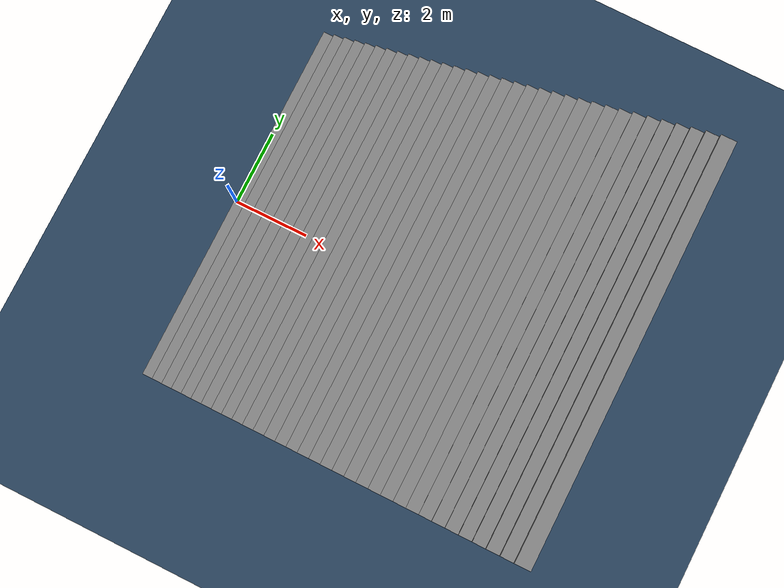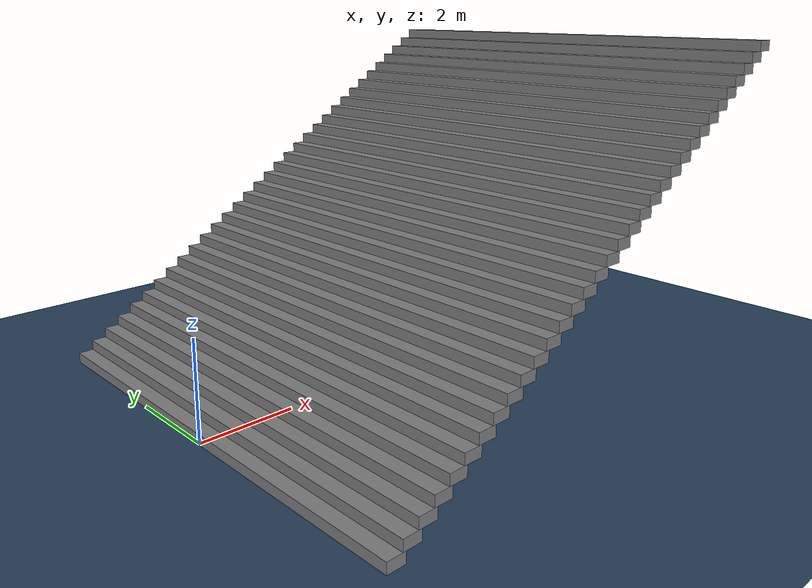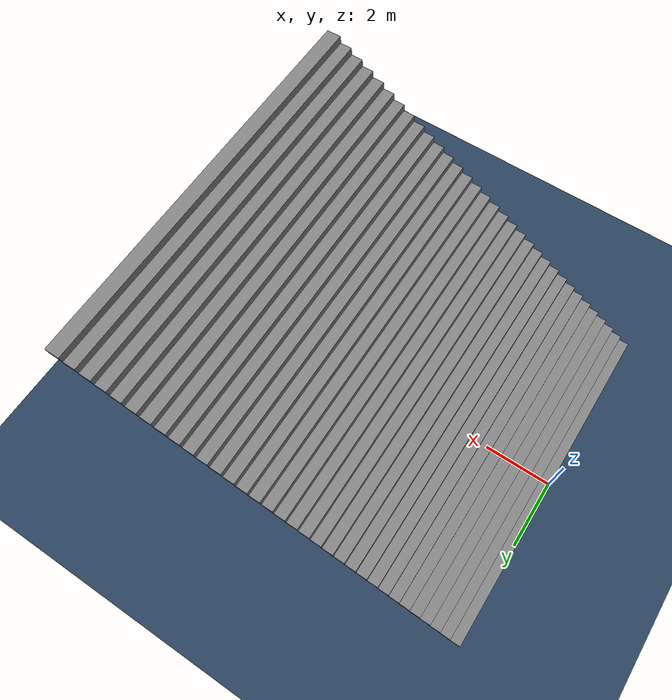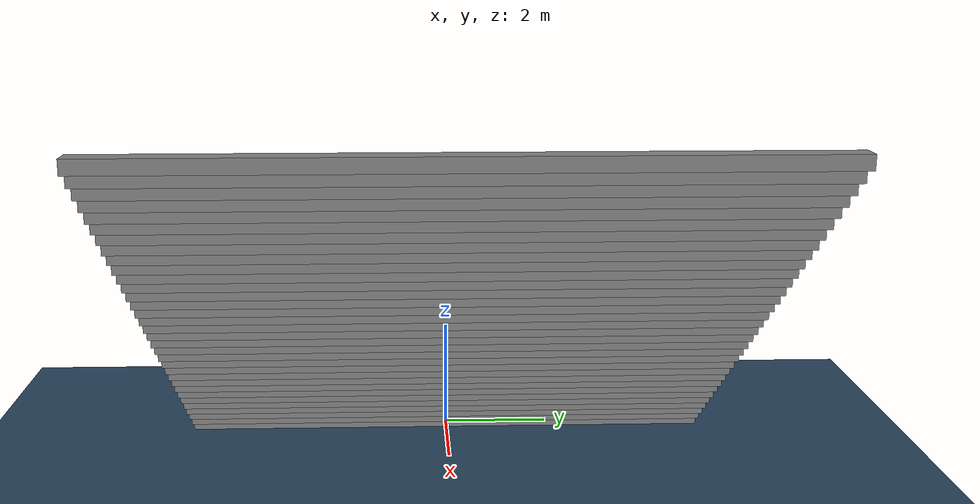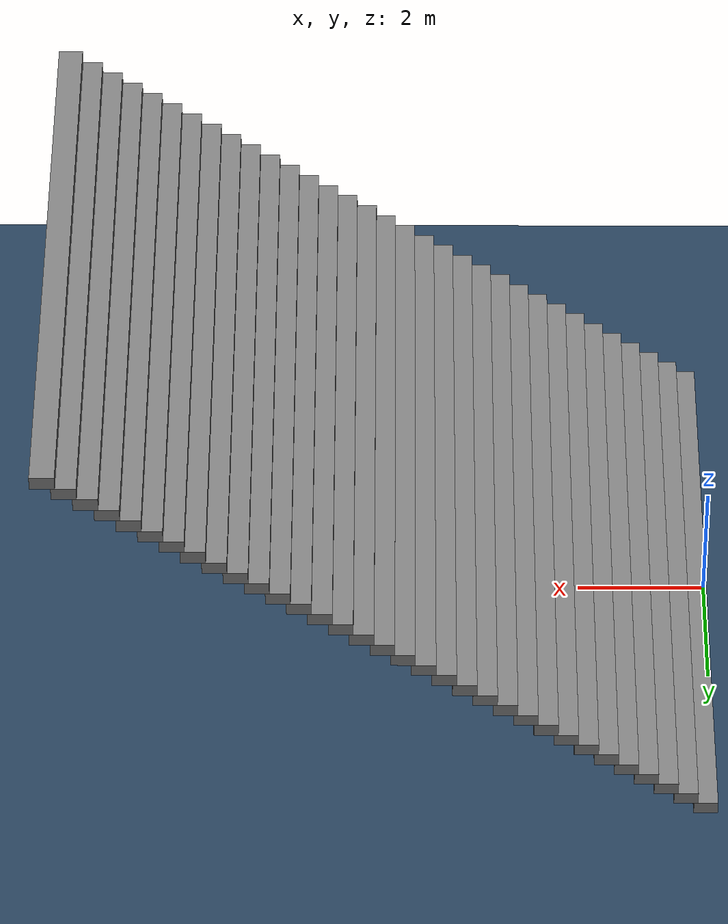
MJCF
<mujoco model="stairs_up_8">
  <!-- Terrain Type: stairs_up, Level: 8, Stairs step height: 0.2100 -->
  <statistic center="0 0 0.1" extent="0.8" />
  <visual>
    <headlight diffuse="0.6 0.6 0.6" ambient="0.3 0.3 0.3" specular="0 0 0" />
    <rgba haze="0.15 0.25 0.35 1" />
    <global azimuth="-130" elevation="-20" />
  </visual>
  <asset>
    <texture type="skybox" builtin="gradient" rgb1="0.3 0.5 0.7" rgb2="0 0 0" width="512" height="3072" />
    <texture type="2d" name="groundplane" builtin="checker" mark="edge" rgb1="0.2 0.3 0.4" rgb2="0.1 0.2 0.3" markrgb="0.8 0.8 0.8" width="300" height="300" />
    <material name="groundplane" texture="groundplane" texuniform="true" texrepeat="5 5" reflectance="0.0" />
  </asset>
  <worldbody>
    <light pos="0 0 1.5" dir="0 0 -1" directional="true" />
    <geom name="floor" size="0 0 0.05" type="plane" material="groundplane" />
    <geom pos="0.155 0.0 0.10500000000000001" type="box" size="0.186 5.0 0.10500000000000001" quat="1.0 0.0 0.0 0.0" />
    <geom pos="0.46499999999999997 0.0 0.31500000000000006" type="box" size="0.186 5.0 0.10500000000000001" quat="1.0 0.0 0.0 0.0" />
    <geom pos="0.7749999999999999 0.0 0.5250000000000001" type="box" size="0.186 5.0 0.10500000000000001" quat="1.0 0.0 0.0 0.0" />
    <geom pos="1.085 0.0 0.7350000000000001" type="box" size="0.186 5.0 0.10500000000000001" quat="1.0 0.0 0.0 0.0" />
    <geom pos="1.395 0.0 0.9450000000000001" type="box" size="0.186 5.0 0.10500000000000001" quat="1.0 0.0 0.0 0.0" />
    <geom pos="1.705 0.0 1.155" type="box" size="0.186 5.0 0.10500000000000001" quat="1.0 0.0 0.0 0.0" />
    <geom pos="2.015 0.0 1.365" type="box" size="0.186 5.0 0.10500000000000001" quat="1.0 0.0 0.0 0.0" />
    <geom pos="2.325 0.0 1.575" type="box" size="0.186 5.0 0.10500000000000001" quat="1.0 0.0 0.0 0.0" />
    <geom pos="2.6350000000000002 0.0 1.785" type="box" size="0.186 5.0 0.10500000000000001" quat="1.0 0.0 0.0 0.0" />
    <geom pos="2.9450000000000003 0.0 1.9949999999999999" type="box" size="0.186 5.0 0.10500000000000001" quat="1.0 0.0 0.0 0.0" />
    <geom pos="3.2550000000000003 0.0 2.205" type="box" size="0.186 5.0 0.10500000000000001" quat="1.0 0.0 0.0 0.0" />
    <geom pos="3.5650000000000004 0.0 2.415" type="box" size="0.186 5.0 0.10500000000000001" quat="1.0 0.0 0.0 0.0" />
    <geom pos="3.8750000000000004 0.0 2.625" type="box" size="0.186 5.0 0.10500000000000001" quat="1.0 0.0 0.0 0.0" />
    <geom pos="4.1850000000000005 0.0 2.835" type="box" size="0.186 5.0 0.10500000000000001" quat="1.0 0.0 0.0 0.0" />
    <geom pos="4.495 0.0 3.045" type="box" size="0.186 5.0 0.10500000000000001" quat="1.0 0.0 0.0 0.0" />
    <geom pos="4.805 0.0 3.255" type="box" size="0.186 5.0 0.10500000000000001" quat="1.0 0.0 0.0 0.0" />
    <geom pos="5.114999999999999 0.0 3.465" type="box" size="0.186 5.0 0.10500000000000001" quat="1.0 0.0 0.0 0.0" />
    <geom pos="5.424999999999999 0.0 3.675" type="box" size="0.186 5.0 0.10500000000000001" quat="1.0 0.0 0.0 0.0" />
    <geom pos="5.7349999999999985 0.0 3.885" type="box" size="0.186 5.0 0.10500000000000001" quat="1.0 0.0 0.0 0.0" />
    <geom pos="6.044999999999998 0.0 4.095" type="box" size="0.186 5.0 0.10500000000000001" quat="1.0 0.0 0.0 0.0" />
    <geom pos="6.354999999999998 0.0 4.305" type="box" size="0.186 5.0 0.10500000000000001" quat="1.0 0.0 0.0 0.0" />
    <geom pos="6.664999999999997 0.0 4.515" type="box" size="0.186 5.0 0.10500000000000001" quat="1.0 0.0 0.0 0.0" />
    <geom pos="6.974999999999997 0.0 4.725" type="box" size="0.186 5.0 0.10500000000000001" quat="1.0 0.0 0.0 0.0" />
    <geom pos="7.284999999999997 0.0 4.935" type="box" size="0.186 5.0 0.10500000000000001" quat="1.0 0.0 0.0 0.0" />
    <geom pos="7.594999999999996 0.0 5.145" type="box" size="0.186 5.0 0.10500000000000001" quat="1.0 0.0 0.0 0.0" />
    <geom pos="7.904999999999996 0.0 5.3549999999999995" type="box" size="0.186 5.0 0.10500000000000001" quat="1.0 0.0 0.0 0.0" />
    <geom pos="8.214999999999996 0.0 5.5649999999999995" type="box" size="0.186 5.0 0.10500000000000001" quat="1.0 0.0 0.0 0.0" />
    <geom pos="8.524999999999997 0.0 5.7749999999999995" type="box" size="0.186 5.0 0.10500000000000001" quat="1.0 0.0 0.0 0.0" />
    <geom pos="8.834999999999997 0.0 5.984999999999999" type="box" size="0.186 5.0 0.10500000000000001" quat="1.0 0.0 0.0 0.0" />
    <geom pos="9.144999999999998 0.0 6.194999999999999" type="box" size="0.186 5.0 0.10500000000000001" quat="1.0 0.0 0.0 0.0" />
    <geom pos="9.454999999999998 0.0 6.404999999999999" type="box" size="0.186 5.0 0.10500000000000001" quat="1.0 0.0 0.0 0.0" />
    <geom pos="9.764999999999999 0.0 6.614999999999999" type="box" size="0.186 5.0 0.10500000000000001" quat="1.0 0.0 0.0 0.0" />
    <geom pos="10.075 0.0 6.824999999999999" type="box" size="0.186 5.0 0.10500000000000001" quat="1.0 0.0 0.0 0.0" />
  </worldbody>
</mujoco>
